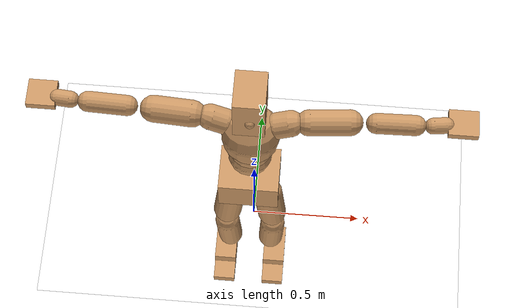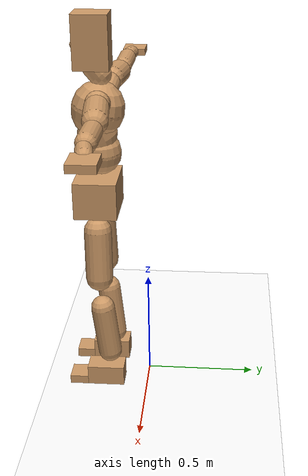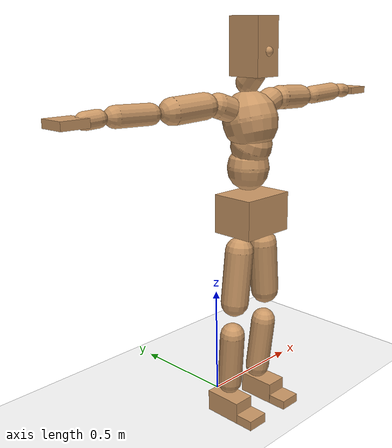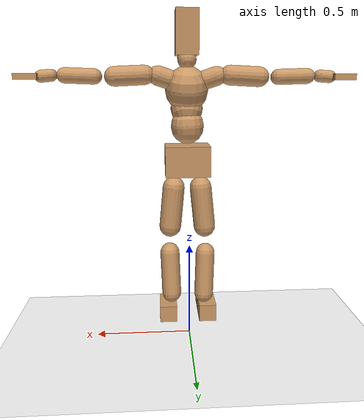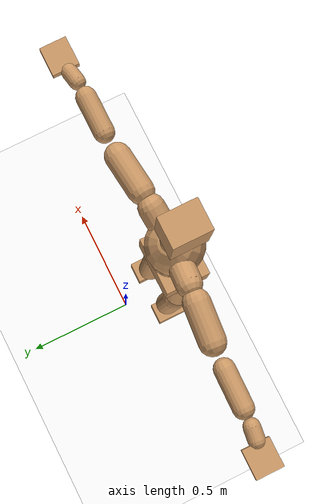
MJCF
<mujoco model="humanoid">
  <option integrator="implicitfast" />

  <visual>
    <global offwidth="1280" offheight="960" />
    <headlight active="1" ambient="0.34 0.34 0.34" diffuse="0.5 0.5 0.5" />
  </visual>

  <default>
    <joint damping="2" stiffness="2" armature="0.01" limited="true" solimplimit="0 .99 .01" />
    <geom condim="1" friction="0.7 0.005 0.0001" solimp=".99 .99 .003" solref="0.015 1" margin="0.001" rgba="0.8 0.6 .4 1" />
    <default class="smplcontact">
      <geom condim="3" friction="1. 0.005 0.0001" solref="0.015 1" solimp="0.98 0.98 0.001" priority="1" />
    </default>
    <default class="stiff_medium">
      <joint stiffness="10" />
    </default>
    <default class="stiff_medium_higher">
      <joint stiffness="50" />
    </default>
    <default class="stiff_high">
      <joint stiffness="100" />
    </default>
  </default>

  <asset>
    <texture type="skybox" builtin="gradient" rgb1="0.99 0.99 0.99" rgb2="0.608 0.828 0.892" width="100" />
    <texture builtin="flat" height="1278" mark="cross" markrgb="1 1 1" name="texgeom" random="0.01" rgb1="0.8 0.6 0.4" rgb2="0.8 0.6 0.4" type="cube" width="127" />
    <texture name="texplane" type="2d" builtin="checker" markrgb="1 1 1" rgb1="0.756 0.772 0.76" rgb2="0.6 0.6 0.6" width="100" height="100" />
    <material name="MatPlane" reflectance="0.5" texture="texplane" texrepeat="1 1" texuniform="true" />
    <material name="geom" texture="texgeom" texuniform="true" />
  </asset>

  <worldbody>
    <light name="tracking_light" pos="0 0 7" dir="0 0 -1" directional="true" cutoff="100" exponent="1" diffuse="1 1 1" specular="0.1 0.1 0.1" mode="trackcom" />
    <camera name="back" pos="0 3 2.4" xyaxes="-1 0 0 0 -1 2" mode="trackcom" />
    <camera name="side" pos="-3 0 2.4" xyaxes="0 -1 0 1 0 2" mode="trackcom" />
    <camera name="front_side" pos="-2.8 -2.8 0.8" xyaxes="0.5 -0.5 0 0.1 0.1 1" mode="trackcom" />
    <geom condim="3" name="floor" pos="0 0 0" rgba="1 1 1 1" size="100 100 .2" type="plane" material="MatPlane" />
    <body name="Pelvis" pos="-0.0018 -0.2233 0.9367" euler="90 0 0">
      <site name="Pelvis" size="0.01" />
      <freejoint name="Pelvis" />
      <geom type="box" pos="-0.0000 -0.0121 -0.0055" size="0.122935 0.08303 0.09545" quat="1.0000 0.0000 0.0000 0.0000" density="3165.830099" name="Pelvis" />
      <body name="L_Hip" pos="0.0695 -0.0914 -0.0068">
        <joint name="L_Hip_x" type="hinge" pos="0 0 0" axis="1 0 0" stiffness="10.0" range="-160.0 22.92" class="stiff_medium" damping="15.0" armature="0.01"/>
        <joint name="L_Hip_y" type="hinge" pos="0 0 0" axis="0 1 0" stiffness="10.0" range="-70.0 70.0" class="stiff_medium" damping="10.000000000000002" armature="0.010000000000000007"/>
        <joint name="L_Hip_z" type="hinge" pos="0 0 0" axis="0 0 1" stiffness="10.0" range="-28.65 90.0" class="stiff_medium" damping="9.999999999999998" armature="0.009999999999999997"/>
        <geom type="capsule" density="2040.816327" fromto="0.0069 -0.075 -0.0009 0.0274 -0.3002 -0.0036" size="0.0615" name="L_Hip" />
        <body name="L_Knee" pos="0.0343 -0.3752 -0.0045">
          <joint name="L_Knee_x" type="hinge" pos="0 0 0" axis="1 0 0" range="-5.16 171.89" damping="7.999999999999999" armature="0.009999999999999998" stiffness="2.0"/>
          <joint name="L_Knee_y" type="hinge" pos="0 0 0" axis="0 1 0" range="-4.58 6.88" damping="8.000000000000004" armature="0.010000000000000009" stiffness="2.0"/>
          <joint name="L_Knee_z" type="hinge" pos="0 0 0" axis="0 0 1" range="-6.88 4.58" damping="7.999999999999994" armature="0.009999999999999986" stiffness="2.0"/>
          <geom type="capsule" density="1234.567901" fromto="-0.0027 -0.0796 -0.0087 -0.0109 -0.3184 -0.035" size="0.0541" name="L_Knee" />
          <body name="L_Ankle" pos="-0.0136 -0.398 -0.0437">
            <joint name="L_Ankle_x" type="hinge" pos="0 0 0" axis="1 0 0" range="-45.84 45.84" class="stiff_medium" damping="6.000000000000043" armature="0.010000000000000142" stiffness="10.0"/>
            <joint name="L_Ankle_y" type="hinge" pos="0 0 0" axis="0 1 0" range="-74.48 22.92" class="stiff_medium" damping="3.000000000000001" armature="0.010000000000000005" stiffness="10.0"/>
            <joint name="L_Ankle_z" type="hinge" pos="0 0 0" axis="0 0 1" range="-4.58 4.58" class="stiff_medium" damping="5.999999999999979" armature="0.009999999999999929" stiffness="10.0"/>
            <geom type="box" pos="0.0233 -0.0239 0.0242" size="0.0483 0.0464 0.085" quat="1.0000 0.0000 0.0000 0.0000" density="449.071558" name="L_Ankle" class="smplcontact" />
            <body name="L_Toe" pos="0.0264 -0.0558 0.1193">
              <joint name="L_Toe_x" type="hinge" pos="0 0 0" axis="1 0 0" range="-91.67 22.92" armature="0.009999999999999556" damping="1.9999999999999556" stiffness="2.0"/>
              <joint name="L_Toe_y" type="hinge" pos="0 0 0" axis="0 1 0" range="-4.58 4.58" armature="0.01" damping="2.0" stiffness="2.0"/>
              <joint name="L_Toe_z" type="hinge" pos="0 0 0" axis="0 0 1" range="-4.58 4.58" armature="0.009999999999998824" damping="1.9999999999998823" stiffness="2.0"/>
              <geom type="box" pos="-0.003 0.0055 0.0248" size="0.0478 0.02 0.0496" quat="1.0000 0.0000 0.0000 0.0000" density="423.206892" name="L_Toe" class="smplcontact" />
            </body>
          </body>
        </body>
      </body>
      <body name="R_Hip" pos="-0.0677 -0.0905 -0.0043">
        <joint name="R_Hip_x" type="hinge" pos="0 0 0" axis="1 0 0" stiffness="10.0" range="-160.0 22.92" class="stiff_medium" damping="15.0" armature="0.01"/>
        <joint name="R_Hip_y" type="hinge" pos="0 0 0" axis="0 1 0" stiffness="10.0" range="-70.0 70.0" class="stiff_medium" damping="10.000000000000002" armature="0.010000000000000007"/>
        <joint name="R_Hip_z" type="hinge" pos="0 0 0" axis="0 0 1" stiffness="10.0" range="-90.0 28.65" class="stiff_medium" damping="9.999999999999998" armature="0.009999999999999997"/>
        <geom type="capsule" density="2040.816327" fromto="-0.0077 -0.0765 -0.0018 -0.0306 -0.3061 -0.0071" size="0.0606" name="R_Hip" />
        <body name="R_Knee" pos="-0.0383 -0.3826 -0.0089">
          <joint name="R_Knee_x" type="hinge" pos="0 0 0" axis="1 0 0" range="-5.16 171.89" damping="7.999999999999999" armature="0.009999999999999998" stiffness="2.0"/>
          <joint name="R_Knee_y" type="hinge" pos="0 0 0" axis="0 1 0" range="-6.88 4.58" damping="8.000000000000004" armature="0.010000000000000009" stiffness="2.0"/>
          <joint name="R_Knee_z" type="hinge" pos="0 0 0" axis="0 0 1" range="-4.58 6.88" damping="7.999999999999994" armature="0.009999999999999986" stiffness="2.0"/>
          <geom type="capsule" density="1234.567901" fromto="0.0032 -0.0797 -0.0085 0.0126 -0.3187 -0.0338" size="0.0541" name="R_Knee" />
          <body name="R_Ankle" pos="0.0158 -0.3984 -0.0423">
            <joint name="R_Ankle_x" type="hinge" pos="0 0 0" axis="1 0 0" range="-45.84 45.84" class="stiff_medium" damping="6.000000000000043" armature="0.010000000000000142" stiffness="10.0"/>
            <joint name="R_Ankle_y" type="hinge" pos="0 0 0" axis="0 1 0" range="-22.92 74.48" class="stiff_medium" damping="3.000000000000001" armature="0.010000000000000005" stiffness="10.0"/>
            <joint name="R_Ankle_z" type="hinge" pos="0 0 0" axis="0 0 1" range="-4.58 4.58" class="stiff_medium" damping="5.999999999999979" armature="0.009999999999999929" stiffness="10.0"/>
            <geom type="box" pos="-0.0212 -0.0174 0.0256" size="0.0483 0.0478 0.0865" quat="1.0000 0.0000 0.0000 0.0000" density="434.700981" name="R_Ankle" class="smplcontact" />
            <body name="R_Toe" pos="-0.0254 -0.0481 0.1233">
              <joint name="R_Toe_x" type="hinge" pos="0 0 0" axis="1 0 0" range="-91.67 22.92" armature="0.009999999999999556" damping="1.9999999999999556" stiffness="2.0"/>
              <joint name="R_Toe_y" type="hinge" pos="0 0 0" axis="0 1 0" range="-4.58 4.58" armature="0.01" damping="2.0" stiffness="2.0"/>
              <joint name="R_Toe_z" type="hinge" pos="0 0 0" axis="0 0 1" range="-4.58 4.58" armature="0.009999999999998824" damping="1.9999999999998823" stiffness="2.0"/>
              <geom type="box" pos="0.0042 0.0045 0.0227" size="0.0479 0.0216 0.0493" quat="1.0000 0.0000 0.0000 0.0000" density="407.384095" name="R_Toe" class="smplcontact" />
            </body>
          </body>
        </body>
      </body>
      <body name="Torso" pos="-0.0025 0.109 -0.0267">
        <joint name="Torso_x" type="hinge" pos="0 0 0" axis="1 0 0" range="-25.78 57.3" class="stiff_medium" damping="17.625104198443257" armature="0.011523641779730403" stiffness="11.980946222222224"/>
        <joint name="Torso_y" type="hinge" pos="0 0 0" axis="0 1 0" range="-57.3 57.3" class="stiff_high" damping="22.37696180330275" armature="0.010349328791968796" stiffness="120.9567377777778"/>
        <joint name="Torso_z" type="hinge" pos="0 0 0" axis="0 0 1" range="-34.38 34.38" class="stiff_high" damping="23.41861632795282" armature="0.011031770897942769" stiffness="124.28457674418603"/>
        <geom type="capsule" density="2040.816327" fromto="0.0025 0.0608 0.0005 0.003 0.0743 0.0006" size="0.088435" name="Torso" />
        <body name="Spine" pos="0.0055 0.1352 0.0011">
          <joint name="Spine_x" type="hinge" pos="0 0 0" axis="1 0 0" stiffness="11.637929777777778" range="-25.78 57.3" class="stiff_medium" damping="17.044815220778226" armature="0.011094975422145452"/>
          <joint name="Spine_y" type="hinge" pos="0 0 0" axis="0 1 0" stiffness="11.668732000000002" range="-57.3 57.3" class="stiff_high" damping="8.76519149674114" armature="0.010287721008180126"/>
          <joint name="Spine_z" type="hinge" pos="0 0 0" axis="0 0 1" stiffness="22.992888444444446" range="-34.38 34.38" class="stiff_high" damping="13.194450227532155" armature="0.010516145098725553"/>
          <geom type="capsule" density="2040.816327" fromto="0.0007 0.0238 0.0114 0.0008 0.0291 0.014" size="0.086825" name="Spine" />
          <body name="Chest" pos="0.0015 0.0529 0.0254">
            <joint name="Chest_x" type="hinge" pos="0 0 0" axis="1 0 0" stiffness="11.18047931818182" range="-25.78 57.3" class="stiff_medium" damping="16.556651246828597" armature="0.010896877304648072"/>
            <joint name="Chest_y" type="hinge" pos="0 0 0" axis="0 1 0" stiffness="10.722496666666665" range="-57.3 57.3" class="stiff_high" damping="8.383114182248335" armature="0.010240823216324128"/>
            <joint name="Chest_z" type="hinge" pos="0 0 0" axis="0 0 1" stiffness="22.588544000000002" range="-34.38 34.38" class="stiff_high" damping="12.965583117347137" armature="0.010336258747701017"/>
            <geom type="capsule" density="2040.816327" fromto="-0.0009 0.0682 -0.0173 -0.001 0.0833 -0.0212" size="0.11523" name="Chest" />
            <body name="Neck" pos="-0.0028 0.2139 -0.0429">
              <joint name="Neck_x" type="hinge" pos="0 0 0" axis="1 0 0" range="-28.65 57.3" class="stiff_medium_higher" damping="10.208627377857004" armature="0.010086749621556639" stiffness="51.65988888888889"/>
              <joint name="Neck_y" type="hinge" pos="0 0 0" axis="0 1 0" range="-40.11 40.11" class="stiff_medium_higher" damping="10.306145201060701" armature="0.010349639184005758" stiffness="51.314170000000004"/>
              <joint name="Neck_z" type="hinge" pos="0 0 0" axis="0 0 1" range="-40.11 40.11" class="stiff_medium_higher" damping="10.101190314708752" armature="0.010072514268974127" stiffness="50.64974"/>
              <geom type="capsule" density="1000" fromto="0.001 0.013 0.0103 0.0041 0.052 0.0411" size="0.05014" name="Neck" />
              <body name="Head" pos="0.0052 0.065 0.0513">
                <joint name="Head_x" type="hinge" pos="0 0 0" axis="1 0 0" range="-28.65 57.3" class="stiff_medium_higher" damping="2.0000000000000013" armature="0.010000000000000014" stiffness="50.0"/>
                <joint name="Head_y" type="hinge" pos="0 0 0" axis="0 1 0" range="-40.11 40.11" class="stiff_medium_higher" damping="2.0" armature="0.01" stiffness="50.0"/>
                <joint name="Head_z" type="hinge" pos="0 0 0" axis="0 0 1" range="-40.11 40.11" class="stiff_medium_higher" damping="1.9999999999999964" armature="0.009999999999999966" stiffness="50.0"/>
                <geom type="box" pos="-0.0042 0.0876 -0.0116" size="0.0606 0.1154 0.076" quat="1.0000 0.0000 0.0000 0.0000" density="1018.069894" name="Head" />
                <geom type="capsule" name="nose" size="0.02 0.01" pos="0 0.07 0.05" quat="1 0 0 0" mass="0" contype="0" conaffinity="0" />
              </body>
            </body>
            <body name="L_Thorax" pos="0.0788 0.1217 -0.0341">
              <joint name="L_Thorax_x" type="hinge" pos="0 0 0" axis="1 0 0" range="-10.89 4.58" class="stiff_medium_higher" damping="19.999999999999993" armature="0.009999999999999992" stiffness="50.0"/>
              <joint name="L_Thorax_y" type="hinge" pos="0 0 0" axis="0 1 0" range="-28.65 17.19" class="stiff_medium_higher" damping="20.0" armature="0.010000000000000002" stiffness="50.0"/>
              <joint name="L_Thorax_z" type="hinge" pos="0 0 0" axis="0 0 1" range="-31.51 40.11" class="stiff_medium_higher" damping="20.0" armature="0.01" stiffness="50.0"/>
              <geom type="capsule" density="1000" fromto="0.0182 0.0061 -0.0018 0.0728 0.0244 -0.0071" size="0.0521" name="L_Thorax" />
              <body name="L_Shoulder" pos="0.091 0.0305 -0.0089">
                <joint name="L_Shoulder_x" type="hinge" pos="0 0 0" axis="1 0 0" range="-97.4 97.4" class="stiff_medium" damping="6.000000000000037" armature="0.010000000000000127" stiffness="10.0"/>
                <joint name="L_Shoulder_y" type="hinge" pos="0 0 0" axis="0 1 0" range="-108.86 80.21" class="stiff_medium" damping="6.0" armature="0.01" stiffness="10.0"/>
                <joint name="L_Shoulder_z" type="hinge" pos="0 0 0" axis="0 0 1" range="-97.4 85.94" class="stiff_medium" damping="6.000000000000002" armature="0.010000000000000007" stiffness="10.0"/>
                <geom type="capsule" density="1000" fromto="0.0519 -0.0026 -0.0055 0.2077 -0.0102 -0.022" size="0.0517" name="L_Shoulder" />
                <body name="L_Elbow" pos="0.2596 -0.0128 -0.0275">
                  <joint name="L_Elbow_x" type="hinge" pos="0 0 0" axis="1 0 0" range="-17.19 4.58" damping="5.000000000000004" armature="0.010000000000000021" stiffness="2.0"/>
                  <joint name="L_Elbow_y" type="hinge" pos="0 0 0" axis="0 1 0" range="-180.0 17.19" damping="5.000000000000002" armature="0.010000000000000009" stiffness="2.0"/>
                  <joint name="L_Elbow_z" type="hinge" pos="0 0 0" axis="0 0 1" range="-100.84 4.58" damping="5.0000000000000036" armature="0.010000000000000016" stiffness="2.0"/>
                  <geom type="capsule" density="1000" fromto="0.0498 0.0018 -0.0002 0.1994 0.0072 -0.0009" size="0.0405" name="L_Elbow" />
                  <body name="L_Wrist" pos="0.2492 0.009 -0.0012">
                    <joint name="L_Wrist_x" type="hinge" pos="0 0 0" axis="1 0 0" range="-180.0 22.92" armature="0.009999999999999641" damping="1.999999999999964" stiffness="2.0"/>
                    <joint name="L_Wrist_y" type="hinge" pos="0 0 0" axis="0 1 0" range="-17.19 17.19" armature="0.010000000000000018" damping="2.0000000000000018" stiffness="2.0"/>
                    <joint name="L_Wrist_z" type="hinge" pos="0 0 0" axis="0 0 1" range="-22.92 22.92" armature="0.010000000000000026" damping="2.0000000000000027" stiffness="2.0"/>
                    <geom type="capsule" density="1000" fromto="0.0168 -0.0016 -0.003 0.0672 -0.0065 -0.012" size="0.0318" name="L_Wrist" class="smplcontact" />
                    <body name="L_Hand" pos="0.084 -0.0082 -0.0149">
                      <joint name="L_Hand_x" type="hinge" pos="0 0 0" axis="1 0 0" range="-17.19 17.19" armature="0.009999999999999802" damping="1.9999999999999802" stiffness="2.0"/>
                      <joint name="L_Hand_y" type="hinge" pos="0 0 0" axis="0 1 0" range="-51.57 51.57" armature="0.009999999999999922" damping="1.9999999999999922" stiffness="2.0"/>
                      <joint name="L_Hand_z" type="hinge" pos="0 0 0" axis="0 0 1" range="-91.67 91.67" armature="0.009999999999999854" damping="1.9999999999999853" stiffness="2.0"/>
                      <geom type="box" pos="0.0493 0.001 -0.0058" size="0.0585 0.0158 0.0538" quat="1.0000 0.0000 0.0000 0.0000" density="400.552564" name="L_Hand" class="smplcontact" />
                    </body>
                  </body>
                </body>
              </body>
            </body>
            <body name="R_Thorax" pos="-0.0818 0.1188 -0.0386">
              <joint name="R_Thorax_x" type="hinge" pos="0 0 0" axis="1 0 0" range="-10.89 4.58" class="stiff_medium_higher" damping="19.999999999999993" armature="0.009999999999999992" stiffness="50.0"/>
              <joint name="R_Thorax_y" type="hinge" pos="0 0 0" axis="0 1 0" range="-17.19 28.65" class="stiff_medium_higher" damping="20.0" armature="0.010000000000000002" stiffness="50.0"/>
              <joint name="R_Thorax_z" type="hinge" pos="0 0 0" axis="0 0 1" range="-40.11 31.51" class="stiff_medium_higher" damping="20.0" armature="0.01" stiffness="50.0"/>
              <geom type="capsule" density="1000" fromto="-0.0192 0.0065 -0.0018 -0.0768 0.026 -0.0073" size="0.0511" name="R_Thorax" />
              <body name="R_Shoulder" pos="-0.096 0.0326 -0.0091">
                <joint name="R_Shoulder_x" type="hinge" pos="0 0 0" axis="1 0 0" range="-97.4 97.4" class="stiff_medium" damping="6.000000000000037" armature="0.010000000000000127" stiffness="10.0"/>
                <joint name="R_Shoulder_y" type="hinge" pos="0 0 0" axis="0 1 0" range="-80.21 108.86" class="stiff_medium" damping="6.0" armature="0.01" stiffness="10.0"/>
                <joint name="R_Shoulder_z" type="hinge" pos="0 0 0" axis="0 0 1" range="-85.94 97.4" class="stiff_medium" damping="6.000000000000002" armature="0.010000000000000007" stiffness="10.0"/>
                <geom type="capsule" density="1000" fromto="-0.0507 -0.0027 -0.0043 -0.203 -0.0107 -0.0171" size="0.0531" name="R_Shoulder" />
                <body name="R_Elbow" pos="-0.2537 -0.0133 -0.0214">
                  <joint name="R_Elbow_x" type="hinge" pos="0 0 0" axis="1 0 0" range="-17.19 4.58" damping="5.000000000000004" armature="0.010000000000000021" stiffness="2.0"/>
                  <joint name="R_Elbow_y" type="hinge" pos="0 0 0" axis="0 1 0" range="-17.19 180.0" damping="5.000000000000002" armature="0.010000000000000009" stiffness="2.0"/>
                  <joint name="R_Elbow_z" type="hinge" pos="0 0 0" axis="0 0 1" range="-4.58 100.84" damping="5.0000000000000036" armature="0.010000000000000016" stiffness="2.0"/>
                  <geom type="capsule" density="1000" fromto="-0.0511 0.0016 -0.0011 -0.2042 0.0062 -0.0044" size="0.0408" name="R_Elbow" />
                  <body name="R_Wrist" pos="-0.2553 0.0078 -0.0056">
                    <joint name="R_Wrist_x" type="hinge" pos="0 0 0" axis="1 0 0" range="-180.0 22.92" armature="0.009999999999999641" damping="1.999999999999964" stiffness="2.0"/>
                    <joint name="R_Wrist_y" type="hinge" pos="0 0 0" axis="0 1 0" range="-17.19 17.19" armature="0.010000000000000018" damping="2.0000000000000018" stiffness="2.0"/>
                    <joint name="R_Wrist_z" type="hinge" pos="0 0 0" axis="0 0 1" range="-22.92 22.92" armature="0.010000000000000026" damping="2.0000000000000027" stiffness="2.0"/>
                    <geom type="capsule" density="1000" fromto="-0.0169 -0.0012 -0.0021 -0.0677 -0.0049 -0.0083" size="0.0326" name="R_Wrist" class="smplcontact" />
                    <body name="R_Hand" pos="-0.0846 -0.0061 -0.0103">
                      <joint name="R_Hand_x" type="hinge" pos="0 0 0" axis="1 0 0" range="-17.19 17.19" armature="0.009999999999999802" damping="1.9999999999999802" stiffness="2.0"/>
                      <joint name="R_Hand_y" type="hinge" pos="0 0 0" axis="0 1 0" range="-51.57 51.57" armature="0.009999999999999922" damping="1.9999999999999922" stiffness="2.0"/>
                      <joint name="R_Hand_z" type="hinge" pos="0 0 0" axis="0 0 1" range="-91.67 91.67" armature="0.009999999999999854" damping="1.9999999999999853" stiffness="2.0"/>
                      <geom type="box" pos="-0.0462 -0.0009 -0.0079" size="0.0569 0.0164 0.0546" quat="1.0000 0.0000 0.0000 0.0000" density="403.679611" name="R_Hand" class="smplcontact" />
                    </body>
                  </body>
                </body>
              </body>
            </body>
          </body>
        </body>
      </body>
    </body>
  </worldbody>
  <actuator>
    <general name="L_Hip_x" joint="L_Hip_x" biastype="affine" gainprm="287.33006409732246" biasprm="-215.3247604770444 -180.0 -2.0" ctrllimited="true" ctrlrange="-1 1" forcerange="-360.0 360.0" />
    <general name="L_Hip_y" joint="L_Hip_y" biastype="affine" gainprm="219.9114857512855" biasprm="0.0 -180.0 -2.0000000000000004" ctrllimited="true" ctrlrange="-1 1" forcerange="-360.0 360.0" />
    <general name="L_Hip_z" joint="L_Hip_z" biastype="affine" gainprm="186.3749841742145" biasprm="96.3683546488669 -180.0 -1.9999999999999996" ctrllimited="true" ctrlrange="-1 1" forcerange="-360.0 360.0" />
    <general name="L_Knee_x" joint="L_Knee_x" biastype="affine" gainprm="278.10948965903646" biasprm="261.8988715665131 -180.0 -1.9999999999999998" ctrllimited="true" ctrlrange="-1 1" forcerange="-360.0 360.0" />
    <general name="L_Knee_y" joint="L_Knee_y" biastype="affine" gainprm="18.001325905069514" biasprm="3.612831551628262 -180.0 -2.000000000000001" ctrllimited="true" ctrlrange="-1 1" forcerange="-360.0 360.0" />
    <general name="L_Knee_z" joint="L_Knee_z" biastype="affine" gainprm="18.001325905069514" biasprm="-3.612831551628262 -180.0 -1.9999999999999984" ctrllimited="true" ctrlrange="-1 1" forcerange="-360.0 360.0" />
    <general name="L_Ankle_x" joint="L_Ankle_x" biastype="affine" gainprm="72.00530362027807" biasprm="0.0 -90.0 -2.000000000000014" ctrllimited="true" ctrlrange="-1 1" forcerange="-180.0 180.0" />
    <general name="L_Ankle_y" joint="L_Ankle_y" biastype="affine" gainprm="76.49778111491148" biasprm="-40.49512930477244 -90.0 -2.0000000000000004" ctrllimited="true" ctrlrange="-1 1" forcerange="-180.0 180.0" />
    <general name="L_Ankle_z" joint="L_Ankle_z" biastype="affine" gainprm="7.1942471767206255" biasprm="0.0 -90.0 -1.999999999999993" ctrllimited="true" ctrlrange="-1 1" forcerange="-180.0 180.0" />
    <general name="L_Toe_x" joint="L_Toe_x" biastype="affine" gainprm="71.99902043497087" biasprm="-43.19689898685965 -72.0 -0.7999999999999823" ctrllimited="true" ctrlrange="-1 1" forcerange="-144.0 144.0" />
    <general name="L_Toe_y" joint="L_Toe_y" biastype="affine" gainprm="5.755397741376501" biasprm="0.0 -72.0 -0.8" ctrllimited="true" ctrlrange="-1 1" forcerange="-144.0 144.0" />
    <general name="L_Toe_z" joint="L_Toe_z" biastype="affine" gainprm="5.755397741376501" biasprm="0.0 -72.0 -0.799999999999953" ctrllimited="true" ctrlrange="-1 1" forcerange="-144.0 144.0" />
    <general name="R_Hip_x" joint="R_Hip_x" biastype="affine" gainprm="287.33006409732246" biasprm="-215.3247604770444 -180.0 -2.0" ctrllimited="true" ctrlrange="-1 1" forcerange="-360.0 360.0" />
    <general name="R_Hip_y" joint="R_Hip_y" biastype="affine" gainprm="219.9114857512855" biasprm="0.0 -180.0 -2.0000000000000004" ctrllimited="true" ctrlrange="-1 1" forcerange="-360.0 360.0" />
    <general name="R_Hip_z" joint="R_Hip_z" biastype="affine" gainprm="186.3749841742145" biasprm="-96.3683546488669 -180.0 -1.9999999999999996" ctrllimited="true" ctrlrange="-1 1" forcerange="-360.0 360.0" />
    <general name="R_Knee_x" joint="R_Knee_x" biastype="affine" gainprm="278.10948965903646" biasprm="261.8988715665131 -180.0 -1.9999999999999998" ctrllimited="true" ctrlrange="-1 1" forcerange="-360.0 360.0" />
    <general name="R_Knee_y" joint="R_Knee_y" biastype="affine" gainprm="18.001325905069514" biasprm="-3.612831551628262 -180.0 -2.000000000000001" ctrllimited="true" ctrlrange="-1 1" forcerange="-360.0 360.0" />
    <general name="R_Knee_z" joint="R_Knee_z" biastype="affine" gainprm="18.001325905069514" biasprm="3.612831551628262 -180.0 -1.9999999999999984" ctrllimited="true" ctrlrange="-1 1" forcerange="-360.0 360.0" />
    <general name="R_Ankle_x" joint="R_Ankle_x" biastype="affine" gainprm="72.00530362027807" biasprm="0.0 -90.0 -2.000000000000014" ctrllimited="true" ctrlrange="-1 1" forcerange="-180.0 180.0" />
    <general name="R_Ankle_y" joint="R_Ankle_y" biastype="affine" gainprm="76.49778111491148" biasprm="40.49512930477244 -90.0 -2.0000000000000004" ctrllimited="true" ctrlrange="-1 1" forcerange="-180.0 180.0" />
    <general name="R_Ankle_z" joint="R_Ankle_z" biastype="affine" gainprm="7.1942471767206255" biasprm="0.0 -90.0 -1.999999999999993" ctrllimited="true" ctrlrange="-1 1" forcerange="-180.0 180.0" />
    <general name="R_Toe_x" joint="R_Toe_x" biastype="affine" gainprm="71.99902043497087" biasprm="-43.19689898685965 -72.0 -0.7999999999999823" ctrllimited="true" ctrlrange="-1 1" forcerange="-144.0 144.0" />
    <general name="R_Toe_y" joint="R_Toe_y" biastype="affine" gainprm="5.755397741376501" biasprm="0.0 -72.0 -0.8" ctrllimited="true" ctrlrange="-1 1" forcerange="-144.0 144.0" />
    <general name="R_Toe_z" joint="R_Toe_z" biastype="affine" gainprm="5.755397741376501" biasprm="0.0 -72.0 -0.799999999999953" ctrllimited="true" ctrlrange="-1 1" forcerange="-144.0 144.0" />
    <general name="Torso_x" joint="Torso_x" biastype="affine" gainprm="208.47127392654428" biasprm="79.09261620323392 -287.5427093333334 -4.700027786251535" ctrllimited="true" ctrlrange="-1 1" forcerange="-431.3140640000001 431.3140640000001" />
    <general name="Torso_y" joint="Torso_y" biastype="affine" gainprm="290.31755428690826" biasprm="0.0 -290.29617066666674 -4.47539236066055" ctrllimited="true" ctrlrange="-1 1" forcerange="-435.4442560000001 435.4442560000001" />
    <general name="Torso_z" joint="Torso_z" biastype="affine" gainprm="178.98297367565732" biasprm="0.0 -298.28298418604646 -4.683723265590563" ctrllimited="true" ctrlrange="-1 1" forcerange="-447.4244762790697 447.4244762790697" />
    <general name="Spine_x" joint="Spine_x" biastype="affine" gainprm="202.50270735219036" biasprm="76.82818170126431 -279.31031466666667 -4.545284058874193" ctrllimited="true" ctrlrange="-1 1" forcerange="-418.965472 418.965472" />
    <general name="Spine_y" joint="Spine_y" biastype="affine" gainprm="280.07019684121815" biasprm="0.0 -280.049568 -4.38259574837057" ctrllimited="true" ctrlrange="-1 1" forcerange="-420.07435200000003 420.07435200000003" />
    <general name="Spine_z" joint="Spine_z" biastype="affine" gainprm="165.56099135494057" biasprm="0.0 -275.91466133333336 -4.398150075844051" ctrllimited="true" ctrlrange="-1 1" forcerange="-413.8719920000001 413.8719920000001" />
    <general name="Chest_x" joint="Chest_x" biastype="affine" gainprm="194.54296207820113" biasprm="73.80830723043931 -268.33150363636366 -4.415106999154292" ctrllimited="true" ctrlrange="-1 1" forcerange="-402.4972554545455 402.4972554545455" />
    <general name="Chest_y" joint="Chest_y" biastype="affine" gainprm="257.3588760169175" biasprm="0.0 -257.33991999999995 -4.191557091124167" ctrllimited="true" ctrlrange="-1 1" forcerange="-386.00987999999995 386.00987999999995" />
    <general name="Chest_z" joint="Chest_z" biastype="affine" gainprm="162.64949690600105" biasprm="0.0 -271.06252800000004 -4.321861039115713" ctrllimited="true" ctrlrange="-1 1" forcerange="-406.593792 406.593792" />
    <general name="Neck_x" joint="Neck_x" biastype="affine" gainprm="27.898394883257048" biasprm="9.299464961085683 -37.195119999999996 -0.8166901902285604" ctrllimited="true" ctrlrange="-1 1" forcerange="-74.39023999999999 74.39023999999999" />
    <general name="Neck_y" joint="Neck_y" biastype="affine" gainprm="25.864246736107948" biasprm="0.0 -36.946202400000004 -0.8244916160848561" ctrllimited="true" ctrlrange="-1 1" forcerange="-73.89240480000001 73.89240480000001" />
    <general name="Neck_z" joint="Neck_z" biastype="affine" gainprm="25.529349348916995" biasprm="0.0 -36.4678128 -0.8080952251767002" ctrllimited="true" ctrlrange="-1 1" forcerange="-72.9356256 72.9356256" />
    <general name="Head_x" joint="Head_x" biastype="affine" gainprm="18.001325905069514" biasprm="6.000441968356505 -24.0 -0.8000000000000006" ctrllimited="true" ctrlrange="-1 1" forcerange="-48.0 48.0" />
    <general name="Head_y" joint="Head_y" biastype="affine" gainprm="16.801237511398213" biasprm="0.0 -24.0 -0.8" ctrllimited="true" ctrlrange="-1 1" forcerange="-48.0 48.0" />
    <general name="Head_z" joint="Head_z" biastype="affine" gainprm="16.801237511398213" biasprm="0.0 -24.0 -0.7999999999999986" ctrllimited="true" ctrlrange="-1 1" forcerange="-48.0 48.0" />
    <general name="L_Thorax_x" joint="L_Thorax_x" biastype="affine" gainprm="16.200146117011364" biasprm="-6.6078165480505335 -120.0 -1.5999999999999994" ctrllimited="true" ctrlrange="-1 1" forcerange="-240.0 240.0" />
    <general name="L_Thorax_y" joint="L_Thorax_y" biastype="affine" gainprm="48.00353574685204" biasprm="-12.00088393671301 -120.0 -1.6" ctrllimited="true" ctrlrange="-1 1" forcerange="-240.0 240.0" />
    <general name="L_Thorax_z" joint="L_Thorax_z" biastype="affine" gainprm="75.00028861670033" biasprm="9.00589894029074 -120.0 -1.6" ctrllimited="true" ctrlrange="-1 1" forcerange="-240.0 240.0" />
    <general name="L_Shoulder_x" joint="L_Shoulder_x" biastype="affine" gainprm="81.5976331892389" biasprm="0.0 -48.0 -1.60000000000001" ctrllimited="true" ctrlrange="-1 1" forcerange="-96.0 96.0" />
    <general name="L_Shoulder_y" joint="L_Shoulder_y" biastype="affine" gainprm="79.19745640189629" biasprm="-12.00088393671301 -48.0 -1.6" ctrllimited="true" ctrlrange="-1 1" forcerange="-96.0 96.0" />
    <general name="L_Shoulder_z" joint="L_Shoulder_z" biastype="affine" gainprm="76.79727961455369" biasprm="-4.800353574685214 -48.0 -1.6000000000000005" ctrllimited="true" ctrlrange="-1 1" forcerange="-96.0 96.0" />
    <general name="L_Elbow_x" joint="L_Elbow_x" biastype="affine" gainprm="13.67849441372996" biasprm="-7.923096672353461 -72.0 -0.8000000000000007" ctrllimited="true" ctrlrange="-1 1" forcerange="-144.0 144.0" />
    <general name="L_Elbow_y" joint="L_Elbow_y" biastype="affine" gainprm="123.89813107227425" biasprm="-102.29653998619085 -72.0 -0.8000000000000004" ctrllimited="true" ctrlrange="-1 1" forcerange="-144.0 144.0" />
    <general name="L_Elbow_z" joint="L_Elbow_z" biastype="affine" gainprm="66.23733950828719" biasprm="-60.4819417669107 -72.0 -0.8000000000000006" ctrllimited="true" ctrlrange="-1 1" forcerange="-144.0 144.0" />
    <general name="L_Wrist_x" joint="L_Wrist_x" biastype="affine" gainprm="21.24973270888136" biasprm="-16.449379134196157 -12.0 -0.7999999999999856" ctrllimited="true" ctrlrange="-1 1" forcerange="-24.0 24.0" />
    <general name="L_Wrist_y" joint="L_Wrist_y" biastype="affine" gainprm="3.6002651810139037" biasprm="0.0 -12.0 -0.8000000000000007" ctrllimited="true" ctrlrange="-1 1" forcerange="-24.0 24.0" />
    <general name="L_Wrist_z" joint="L_Wrist_z" biastype="affine" gainprm="4.800353574685205" biasprm="0.0 -12.0 -0.8000000000000012" ctrllimited="true" ctrlrange="-1 1" forcerange="-24.0 24.0" />
    <general name="L_Hand_x" joint="L_Hand_x" biastype="affine" gainprm="3.6002651810139037" biasprm="0.0 -12.0 -0.7999999999999922" ctrllimited="true" ctrlrange="-1 1" forcerange="-24.0 24.0" />
    <general name="L_Hand_y" joint="L_Hand_y" biastype="affine" gainprm="10.800795543041708" biasprm="0.0 -12.0 -0.7999999999999969" ctrllimited="true" ctrlrange="-1 1" forcerange="-24.0 24.0" />
    <general name="L_Hand_z" joint="L_Hand_z" biastype="affine" gainprm="19.199319903638422" biasprm="0.0 -12.0 -0.7999999999999942" ctrllimited="true" ctrlrange="-1 1" forcerange="-24.0 24.0" />
    <general name="R_Thorax_x" joint="R_Thorax_x" biastype="affine" gainprm="16.200146117011364" biasprm="-6.6078165480505335 -120.0 -1.5999999999999994" ctrllimited="true" ctrlrange="-1 1" forcerange="-240.0 240.0" />
    <general name="R_Thorax_y" joint="R_Thorax_y" biastype="affine" gainprm="48.00353574685204" biasprm="12.000883936713002 -120.0 -1.6" ctrllimited="true" ctrlrange="-1 1" forcerange="-240.0 240.0" />
    <general name="R_Thorax_z" joint="R_Thorax_z" biastype="affine" gainprm="75.00028861670033" biasprm="-9.00589894029074 -120.0 -1.6" ctrllimited="true" ctrlrange="-1 1" forcerange="-240.0 240.0" />
    <general name="R_Shoulder_x" joint="R_Shoulder_x" biastype="affine" gainprm="81.5976331892389" biasprm="0.0 -48.0 -1.60000000000001" ctrllimited="true" ctrlrange="-1 1" forcerange="-96.0 96.0" />
    <general name="R_Shoulder_y" joint="R_Shoulder_y" biastype="affine" gainprm="79.19745640189629" biasprm="12.00088393671301 -48.0 -1.6" ctrllimited="true" ctrlrange="-1 1" forcerange="-96.0 96.0" />
    <general name="R_Shoulder_z" joint="R_Shoulder_z" biastype="affine" gainprm="76.79727961455369" biasprm="4.800353574685204 -48.0 -1.6000000000000005" ctrllimited="true" ctrlrange="-1 1" forcerange="-96.0 96.0" />
    <general name="R_Elbow_x" joint="R_Elbow_x" biastype="affine" gainprm="13.67849441372996" biasprm="-7.923096672353461 -72.0 -0.8000000000000007" ctrllimited="true" ctrlrange="-1 1" forcerange="-144.0 144.0" />
    <general name="R_Elbow_y" joint="R_Elbow_y" biastype="affine" gainprm="123.89813107227425" biasprm="102.29653998619085 -72.0 -0.8000000000000004" ctrllimited="true" ctrlrange="-1 1" forcerange="-144.0 144.0" />
    <general name="R_Elbow_z" joint="R_Elbow_z" biastype="affine" gainprm="66.23733950828719" biasprm="60.481941766910694 -72.0 -0.8000000000000006" ctrllimited="true" ctrlrange="-1 1" forcerange="-144.0 144.0" />
    <general name="R_Wrist_x" joint="R_Wrist_x" biastype="affine" gainprm="21.24973270888136" biasprm="-16.449379134196157 -12.0 -0.7999999999999856" ctrllimited="true" ctrlrange="-1 1" forcerange="-24.0 24.0" />
    <general name="R_Wrist_y" joint="R_Wrist_y" biastype="affine" gainprm="3.6002651810139037" biasprm="0.0 -12.0 -0.8000000000000007" ctrllimited="true" ctrlrange="-1 1" forcerange="-24.0 24.0" />
    <general name="R_Wrist_z" joint="R_Wrist_z" biastype="affine" gainprm="4.800353574685205" biasprm="0.0 -12.0 -0.8000000000000012" ctrllimited="true" ctrlrange="-1 1" forcerange="-24.0 24.0" />
    <general name="R_Hand_x" joint="R_Hand_x" biastype="affine" gainprm="3.6002651810139037" biasprm="0.0 -12.0 -0.7999999999999922" ctrllimited="true" ctrlrange="-1 1" forcerange="-24.0 24.0" />
    <general name="R_Hand_y" joint="R_Hand_y" biastype="affine" gainprm="10.800795543041708" biasprm="0.0 -12.0 -0.7999999999999969" ctrllimited="true" ctrlrange="-1 1" forcerange="-24.0 24.0" />
    <general name="R_Hand_z" joint="R_Hand_z" biastype="affine" gainprm="19.199319903638422" biasprm="0.0 -12.0 -0.7999999999999942" ctrllimited="true" ctrlrange="-1 1" forcerange="-24.0 24.0" />
  </actuator>
  <contact>
    <exclude body1="Torso" body2="Chest" />
    <exclude body1="Head" body2="Chest" />
    <exclude body1="R_Knee" body2="R_Toe" />
    <exclude body1="R_Knee" body2="L_Ankle" />
    <exclude body1="R_Knee" body2="L_Toe" />
    <exclude body1="L_Knee" body2="L_Toe" />
    <exclude body1="L_Knee" body2="R_Ankle" />
    <exclude body1="L_Knee" body2="R_Toe" />
    <exclude body1="L_Shoulder" body2="Chest" />
    <exclude body1="R_Shoulder" body2="Chest" />
  </contact>
  <sensor>
    <framelinvel name="sensor_Pelvis_framelinvel" objtype="xbody" objname="Pelvis" />
    <framelinvel name="sensor_L_Hip_framelinvel" objtype="xbody" objname="L_Hip" />
    <framelinvel name="sensor_L_Knee_framelinvel" objtype="xbody" objname="L_Knee" />
    <framelinvel name="sensor_L_Ankle_framelinvel" objtype="xbody" objname="L_Ankle" />
    <framelinvel name="sensor_L_Toe_framelinvel" objtype="xbody" objname="L_Toe" />
    <framelinvel name="sensor_R_Hip_framelinvel" objtype="xbody" objname="R_Hip" />
    <framelinvel name="sensor_R_Knee_framelinvel" objtype="xbody" objname="R_Knee" />
    <framelinvel name="sensor_R_Ankle_framelinvel" objtype="xbody" objname="R_Ankle" />
    <framelinvel name="sensor_R_Toe_framelinvel" objtype="xbody" objname="R_Toe" />
    <framelinvel name="sensor_Torso_framelinvel" objtype="xbody" objname="Torso" />
    <framelinvel name="sensor_Spine_framelinvel" objtype="xbody" objname="Spine" />
    <framelinvel name="sensor_Chest_framelinvel" objtype="xbody" objname="Chest" />
    <framelinvel name="sensor_Neck_framelinvel" objtype="xbody" objname="Neck" />
    <framelinvel name="sensor_Head_framelinvel" objtype="xbody" objname="Head" />
    <framelinvel name="sensor_L_Thorax_framelinvel" objtype="xbody" objname="L_Thorax" />
    <framelinvel name="sensor_L_Shoulder_framelinvel" objtype="xbody" objname="L_Shoulder" />
    <framelinvel name="sensor_L_Elbow_framelinvel" objtype="xbody" objname="L_Elbow" />
    <framelinvel name="sensor_L_Wrist_framelinvel" objtype="xbody" objname="L_Wrist" />
    <framelinvel name="sensor_L_Hand_framelinvel" objtype="xbody" objname="L_Hand" />
    <framelinvel name="sensor_R_Thorax_framelinvel" objtype="xbody" objname="R_Thorax" />
    <framelinvel name="sensor_R_Shoulder_framelinvel" objtype="xbody" objname="R_Shoulder" />
    <framelinvel name="sensor_R_Elbow_framelinvel" objtype="xbody" objname="R_Elbow" />
    <framelinvel name="sensor_R_Wrist_framelinvel" objtype="xbody" objname="R_Wrist" />
    <framelinvel name="sensor_R_Hand_framelinvel" objtype="xbody" objname="R_Hand" />
    <frameangvel name="sensor_Pelvis_frameangvel" objtype="xbody" objname="Pelvis" />
    <frameangvel name="sensor_L_Hip_frameangvel" objtype="xbody" objname="L_Hip" />
    <frameangvel name="sensor_L_Knee_frameangvel" objtype="xbody" objname="L_Knee" />
    <frameangvel name="sensor_L_Ankle_frameangvel" objtype="xbody" objname="L_Ankle" />
    <frameangvel name="sensor_L_Toe_frameangvel" objtype="xbody" objname="L_Toe" />
    <frameangvel name="sensor_R_Hip_frameangvel" objtype="xbody" objname="R_Hip" />
    <frameangvel name="sensor_R_Knee_frameangvel" objtype="xbody" objname="R_Knee" />
    <frameangvel name="sensor_R_Ankle_frameangvel" objtype="xbody" objname="R_Ankle" />
    <frameangvel name="sensor_R_Toe_frameangvel" objtype="xbody" objname="R_Toe" />
    <frameangvel name="sensor_Torso_frameangvel" objtype="xbody" objname="Torso" />
    <frameangvel name="sensor_Spine_frameangvel" objtype="xbody" objname="Spine" />
    <frameangvel name="sensor_Chest_frameangvel" objtype="xbody" objname="Chest" />
    <frameangvel name="sensor_Neck_frameangvel" objtype="xbody" objname="Neck" />
    <frameangvel name="sensor_Head_frameangvel" objtype="xbody" objname="Head" />
    <frameangvel name="sensor_L_Thorax_frameangvel" objtype="xbody" objname="L_Thorax" />
    <frameangvel name="sensor_L_Shoulder_frameangvel" objtype="xbody" objname="L_Shoulder" />
    <frameangvel name="sensor_L_Elbow_frameangvel" objtype="xbody" objname="L_Elbow" />
    <frameangvel name="sensor_L_Wrist_frameangvel" objtype="xbody" objname="L_Wrist" />
    <frameangvel name="sensor_L_Hand_frameangvel" objtype="xbody" objname="L_Hand" />
    <frameangvel name="sensor_R_Thorax_frameangvel" objtype="xbody" objname="R_Thorax" />
    <frameangvel name="sensor_R_Shoulder_frameangvel" objtype="xbody" objname="R_Shoulder" />
    <frameangvel name="sensor_R_Elbow_frameangvel" objtype="xbody" objname="R_Elbow" />
    <frameangvel name="sensor_R_Wrist_frameangvel" objtype="xbody" objname="R_Wrist" />
    <frameangvel name="sensor_R_Hand_frameangvel" objtype="xbody" objname="R_Hand" />
    <subtreelinvel name="Chest_subtreelinvel" body="Chest" />
    <gyro name="Pelvis_gyro" site="Pelvis" />
  </sensor>
</mujoco>
